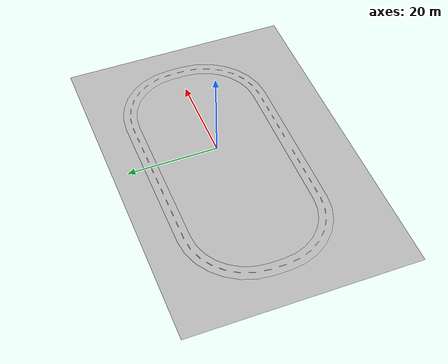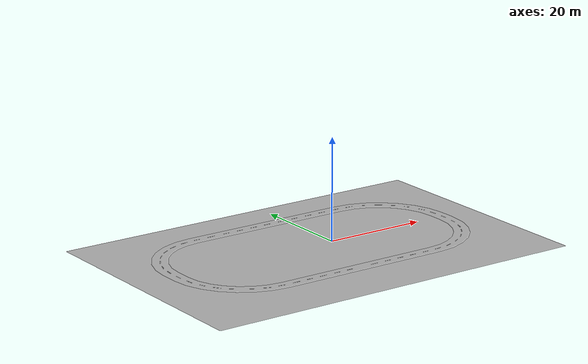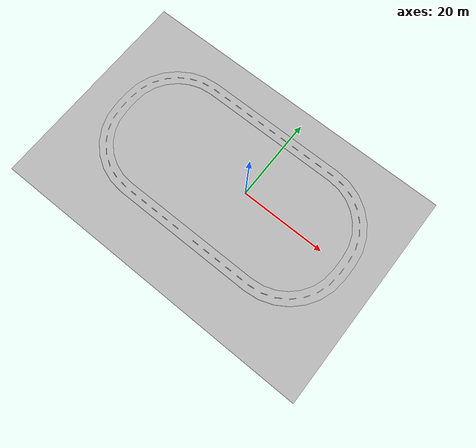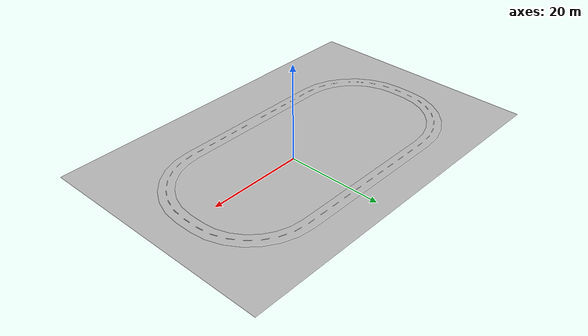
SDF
<sdf version="1.7">
 <world name="default">
  <gravity>0 0 -9.8</gravity>
  <magnetic_field>6e-06 2.3e-05 -4.2e-05</magnetic_field>
  <atmosphere type="adiabatic"/>
  <physics name="default_physics" default="0" type="ode">
   <max_step_size>0.001</max_step_size>
   <real_time_factor>1</real_time_factor>
   <real_time_update_rate>1000</real_time_update_rate>
  </physics>
  <scene><ambient>0.4 0.4 0.4 1</ambient><background>0.7 0.7 0.7 1</background><shadows>1</shadows></scene>
  <spherical_coordinates>
   <surface_model>EARTH_WGS84</surface_model>
   <latitude_deg>0</latitude_deg>
   <longitude_deg>0</longitude_deg>
   <elevation>0</elevation>
   <heading_deg>0</heading_deg>
  </spherical_coordinates>
  <model name="aws_robomaker_racetrack_Track_05_00">
   <frame name="aws_Track_05::__model__" attached_to="aws_Track_05::body">
    <pose relative_to="__model__">0 0 0 0 -0 0</pose>
   </frame>
   <link name="aws_Track_05::body">
    <pose relative_to="aws_Track_05::__model__">0 0 0 0 -0 0</pose>
    <inertial>
     <mass>1000</mass>
     <inertia><ixx>1</ixx><ixy>0</ixy><ixz>0</ixz><iyy>1</iyy><iyz>0</iyz><izz>1</izz></inertia>
    </inertial>
    <visual name="visual">
     <geometry>
      <mesh><uri>file://models/aws_robomaker_racetrack_Track_05/meshes/aws_Track_05_visual.DAE</uri></mesh>
     </geometry>
     <material><shader type="pixel"><normal_map>__default__</normal_map></shader></material>
     <meta><layer>0</layer></meta>
    </visual>
    <collision name="collision_0">
     <geometry>
      <mesh>
       <uri>file://models/aws_robomaker_racetrack_Track_05/meshes/aws_Track_05_collision.DAE</uri>
       <scale>1 1 1</scale>
      </mesh>
     </geometry>
     <surface>
      <friction>
       <ode><mu>100</mu><mu2>50</mu2><fdir1>0 0 0</fdir1><slip1>0</slip1><slip2>0</slip2></ode>
       <torsional>
        <coefficient>1</coefficient>
        <patch_radius>0</patch_radius>
        <surface_radius>0</surface_radius>
        <use_patch_radius>1</use_patch_radius>
        <ode><slip>0</slip></ode>
       </torsional>
      </friction>
      <bounce><restitution_coefficient>0</restitution_coefficient><threshold>1e+06</threshold></bounce>
      <contact>
       <collide_without_contact>0</collide_without_contact>
       <collide_without_contact_bitmask>1</collide_without_contact_bitmask>
       <collide_bitmask>1</collide_bitmask>
       <ode>
        <soft_cfm>0</soft_cfm>
        <soft_erp>0.2</soft_erp>
        <kp>1e+13</kp>
        <kd>1</kd>
        <max_vel>0.01</max_vel>
        <min_depth>0</min_depth>
       </ode>
       <bullet>
        <split_impulse>1</split_impulse>
        <split_impulse_penetration_threshold>-0.01</split_impulse_penetration_threshold>
        <soft_cfm>0</soft_cfm>
        <soft_erp>0.2</soft_erp>
        <kp>1e+13</kp>
        <kd>1</kd>
       </bullet>
      </contact>
     </surface>
    </collision>
   </link>
   <static>1</static>
   <pose>0 0 0.051 0 -0 0</pose>
  </model>
  <model name="aws_robomaker_racetrack_Trackline_01_00">
   <frame name="aws_Trackline_01::__model__" attached_to="aws_Trackline_01::body">
    <pose relative_to="__model__">0 0 0 0 -0 0</pose>
   </frame>
   <link name="aws_Trackline_01::body">
    <pose relative_to="aws_Trackline_01::__model__">0 0 0 0 -0 0</pose>
    <inertial>
     <mass>0.5</mass>
     <inertia><ixx>1</ixx><ixy>0</ixy><ixz>0</ixz><iyy>1</iyy><iyz>0</iyz><izz>1</izz></inertia>
    </inertial>
    <visual name="visual">
     <geometry>
      <mesh><uri>file://models/aws_robomaker_racetrack_Trackline_01/meshes/aws_Trackline_01_visual.DAE</uri></mesh>
     </geometry>
     <material><shader type="pixel"><normal_map>__default__</normal_map></shader></material>
     <meta><layer>0</layer></meta>
    </visual>
    <collision name="collision_0">
     <geometry>
      <mesh>
       <uri>file://models/aws_robomaker_racetrack_Trackline_01/meshes/aws_Trackline_01_collision.DAE</uri>
       <scale>1 1 1</scale>
      </mesh>
     </geometry>
     <surface>
      <friction>
       <ode><mu>1</mu><mu2>1</mu2><fdir1>0 0 0</fdir1><slip1>0</slip1><slip2>0</slip2></ode>
       <torsional>
        <coefficient>1</coefficient>
        <patch_radius>0</patch_radius>
        <surface_radius>0</surface_radius>
        <use_patch_radius>1</use_patch_radius>
        <ode><slip>0</slip></ode>
       </torsional>
      </friction>
      <bounce><restitution_coefficient>0</restitution_coefficient><threshold>1e+06</threshold></bounce>
      <contact>
       <collide_without_contact>0</collide_without_contact>
       <collide_without_contact_bitmask>1</collide_without_contact_bitmask>
       <collide_bitmask>0</collide_bitmask>
       <ode>
        <soft_cfm>0</soft_cfm>
        <soft_erp>0.2</soft_erp>
        <kp>1e+13</kp>
        <kd>1</kd>
        <max_vel>0.01</max_vel>
        <min_depth>0</min_depth>
       </ode>
       <bullet>
        <split_impulse>1</split_impulse>
        <split_impulse_penetration_threshold>-0.01</split_impulse_penetration_threshold>
        <soft_cfm>0</soft_cfm>
        <soft_erp>0.2</soft_erp>
        <kp>1e+13</kp>
        <kd>1</kd>
       </bullet>
      </contact>
     </surface>
    </collision>
   </link>
   <static>1</static>
   <pose>-4.24539 0 0.102 0 -0 0</pose>
  </model>
  <model name="aws_robomaker_racetrack_Ground_01_00">
   <frame name="aws_Ground_01::__model__" attached_to="aws_Ground_01::body">
    <pose relative_to="__model__">0 0 0 0 -0 0</pose>
   </frame>
   <link name="aws_Ground_01::body">
    <pose relative_to="aws_Ground_01::__model__">0 0 0 0 -0 0</pose>
    <inertial>
     <mass>10000</mass>
     <inertia><ixx>0</ixx><ixy>0</ixy><ixz>0</ixz><iyy>0</iyy><iyz>0</iyz><izz>0</izz></inertia>
    </inertial>
    <visual name="visual">
     <geometry>
      <mesh>
       <uri>file://models/aws_robomaker_racetrack_Ground_01/meshes/aws_Ground_01_visual.DAE</uri>
       <scale>0.09 0.06 0.2</scale>
      </mesh>
     </geometry>
     <material><shader type="pixel"><normal_map>__default__</normal_map></shader></material>
     <meta><layer>0</layer></meta>
    </visual>
    <collision name="collision_0">
     <geometry>
      <mesh>
       <uri>file://models/aws_robomaker_racetrack_Ground_01/meshes/aws_Ground_01_collision.DAE</uri>
       <scale>0.2 0.2 0.2</scale>
      </mesh>
     </geometry>
     <surface>
      <friction>
       <ode><mu>1</mu><mu2>1</mu2><fdir1>0 0 0</fdir1><slip1>0</slip1><slip2>0</slip2></ode>
       <torsional>
        <coefficient>1</coefficient>
        <patch_radius>0</patch_radius>
        <surface_radius>0</surface_radius>
        <use_patch_radius>1</use_patch_radius>
        <ode><slip>0</slip></ode>
       </torsional>
      </friction>
      <bounce><restitution_coefficient>0</restitution_coefficient><threshold>1e+06</threshold></bounce>
      <contact>
       <collide_without_contact>0</collide_without_contact>
       <collide_without_contact_bitmask>1</collide_without_contact_bitmask>
       <collide_bitmask>65535</collide_bitmask>
       <ode>
        <soft_cfm>0</soft_cfm>
        <soft_erp>0.2</soft_erp>
        <kp>1e+13</kp>
        <kd>1</kd>
        <max_vel>0.01</max_vel>
        <min_depth>0</min_depth>
       </ode>
       <bullet>
        <split_impulse>1</split_impulse>
        <split_impulse_penetration_threshold>-0.01</split_impulse_penetration_threshold>
        <soft_cfm>0</soft_cfm>
        <soft_erp>0.2</soft_erp>
        <kp>1e+13</kp>
        <kd>1</kd>
       </bullet>
      </contact>
     </surface>
    </collision>
   </link>
   <static>1</static>
   <pose>-4.9 -2 0.05 0 -0 0</pose>
  </model>
  <model name="ground_plane">
   <pose>0 0 -121745 0 -0 0</pose>
   <link name="link">
    <pose>0 0 -1 0 -0 0</pose>
    <inertial>
     <inertia><ixx>1</ixx><ixy>0</ixy><ixz>0</ixz><iyy>1</iyy><iyz>0</iyz><izz>1</izz></inertia>
     <mass>1</mass>
    </inertial>
    <velocity>0 0 0 0 -0 0</velocity>
    <acceleration>0 0 0 0 -0 0</acceleration>
   </link>
   <scale>1 1 1</scale>
  </model>
  <light name="sun" type="directional">
   <pose>0 0 10 0 -0 0</pose>
   <diffuse>1 1 1 1</diffuse>
   <specular>1 1 1 1</specular>
   <attenuation>
    <range>1000</range>
    <constant>0.9</constant>
    <linear>0.01</linear>
    <quadratic>0.001</quadratic>
   </attenuation>
   <direction>-0.5 0.1 -0.9</direction>
   <spot><inner_angle>0</inner_angle><outer_angle>0</outer_angle><falloff>0</falloff></spot>
  </light>
  <light name="sun2" type="directional">
   <pose>0 0 10 0 -0 0</pose>
   <diffuse>1 1 1 1</diffuse>
   <specular>1 1 1 1</specular>
   <attenuation>
    <range>1000</range>
    <constant>0.9</constant>
    <linear>0.01</linear>
    <quadratic>0.001</quadratic>
   </attenuation>
   <direction>-0.5 0.1 -0.9</direction>
   <spot><inner_angle>0</inner_angle><outer_angle>0</outer_angle><falloff>0</falloff></spot>
  </light>
  <light name="user_point_light_0" type="point">
   <pose>1.49278 -15.5363 1 0 -0 0</pose>
   <diffuse>0 0.98039 0 1</diffuse>
   <specular>0.1 0.1 0.1 1</specular>
   <attenuation>
    <range>0.3</range>
    <constant>0.02</constant>
    <linear>0.01</linear>
    <quadratic>0</quadratic>
   </attenuation>
   <cast_shadows>0</cast_shadows>
   <direction>0 0 -1</direction>
   <spot><inner_angle>0</inner_angle><outer_angle>0</outer_angle><falloff>0</falloff></spot>
  </light>
  <light name="user_point_light_1" type="point">
   <pose>6.99411 -11.55 1 0 -0 0</pose>
   <diffuse>0 0.98039 0 1</diffuse>
   <specular>0.1 0.1 0.1 1</specular>
   <attenuation>
    <range>0.3</range>
    <constant>0.02</constant>
    <linear>0.01</linear>
    <quadratic>0</quadratic>
   </attenuation>
   <cast_shadows>0</cast_shadows>
   <direction>0 0 -1</direction>
   <spot><inner_angle>0</inner_angle><outer_angle>0</outer_angle><falloff>0</falloff></spot>
  </light>
  <light name="user_point_light_2" type="point">
   <pose>5.65528 -14.8924 1 0 -0 0</pose>
   <diffuse>0 0.98039 0 1</diffuse>
   <specular>0.1 0.1 0.1 1</specular>
   <attenuation>
    <range>0.3</range>
    <constant>0.02</constant>
    <linear>0.01</linear>
    <quadratic>0</quadratic>
   </attenuation>
   <cast_shadows>0</cast_shadows>
   <direction>0 0 -1</direction>
   <spot><inner_angle>0</inner_angle><outer_angle>0</outer_angle><falloff>0</falloff></spot>
  </light>
  <light name="user_point_light_3" type="point">
   <pose>3.6452 -17.3437 1 0 -0 0</pose>
   <diffuse>0 0.98039 0 1</diffuse>
   <specular>0.1 0.1 0.1 1</specular>
   <attenuation>
    <range>0.3</range>
    <constant>0.02</constant>
    <linear>0.01</linear>
    <quadratic>0</quadratic>
   </attenuation>
   <cast_shadows>0</cast_shadows>
   <direction>0 0 -1</direction>
   <spot><inner_angle>0</inner_angle><outer_angle>0</outer_angle><falloff>0</falloff></spot>
  </light>
 </world>
</sdf>
